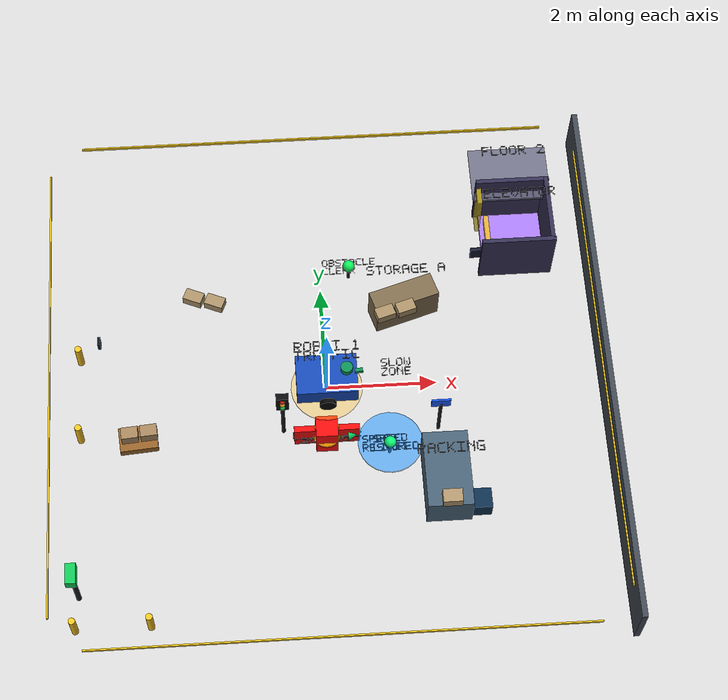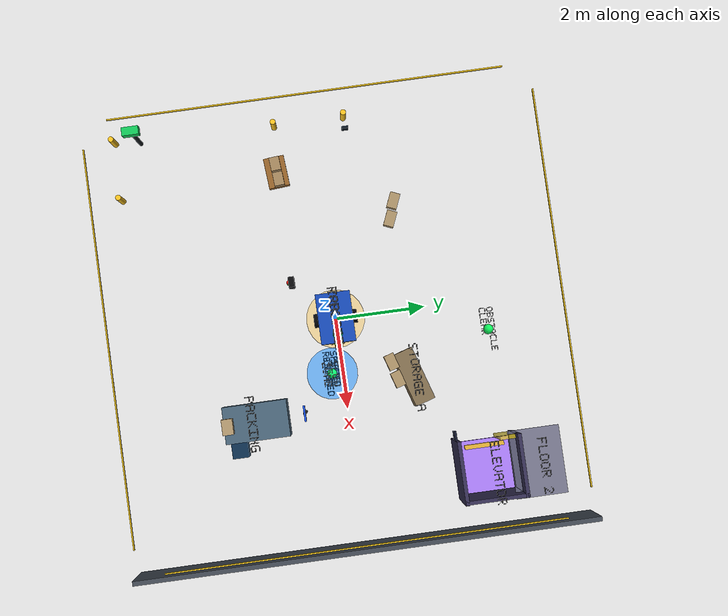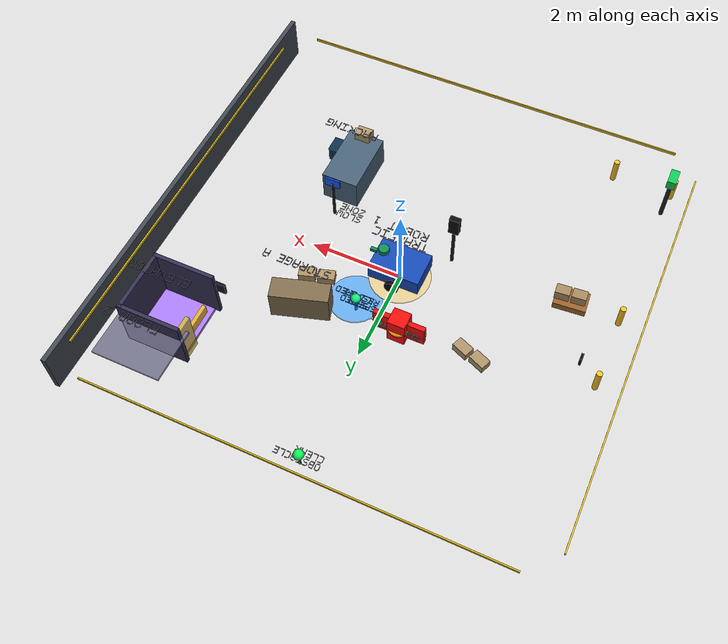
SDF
<sdf version="1.9">
 <world name="indoor_room">
  <model name="east_wall">
   <static>true</static>
   <pose>5 0 0.5 0 0 0</pose>
   <link name="link">
    <collision name="c"><geometry><box><size>0.1 10 1</size></box></geometry></collision>
    <visual name="v">
     <geometry><box><size>0.1 10 1</size></box></geometry>
     <material><diffuse>0.25 0.28 0.32 1</diffuse></material>
    </visual>
   </link>
  </model>
  <model name="storage_rack_1">
   <static>true</static>
   <pose>1.5 1.5 0.35 0 0 0.3</pose>
   <link name="link">
    <collision name="c"><geometry><box><size>1.2 0.45 0.7</size></box></geometry></collision>
    <visual name="v">
     <geometry><box><size>1.2 0.45 0.7</size></box></geometry>
     <material><diffuse>0.50 0.42 0.30 1</diffuse></material>
    </visual>
   </link>
  </model>
  <model name="packing_table">
   <static>true</static>
   <pose>2 -2 0.35 0 0 0.0</pose>
   <link name="link">
    <collision name="c"><geometry><box><size>0.8 1.4 0.7</size></box></geometry></collision>
    <visual name="v">
     <geometry><box><size>0.8 1.4 0.7</size></box></geometry>
     <material><diffuse>0.28 0.38 0.46 1</diffuse></material>
    </visual>
   </link>
  </model>
  <model name="showcase_pallets_and_totes">
   <static>true</static>
   <link name="link">
    <visual name="receiving_pallet">
     <pose>-3.42 -0.86 0.08 0 0 0.08</pose>
     <geometry><box><size>0.68 0.46 0.16</size></box></geometry>
     <material><diffuse>0.58 0.38 0.16 1</diffuse></material>
    </visual>
    <visual name="receiving_tote_1">
     <pose>-3.56 -0.86 0.30 0 0 0.08</pose>
     <geometry><box><size>0.30 0.22 0.22</size></box></geometry>
     <material><diffuse>0.64 0.52 0.36 1</diffuse></material>
    </visual>
    <visual name="receiving_tote_2">
     <pose>-3.22 -0.83 0.30 0 0 0.08</pose>
     <geometry><box><size>0.30 0.22 0.22</size></box></geometry>
     <material><diffuse>0.64 0.52 0.36 1</diffuse></material>
    </visual>
    <visual name="storage_a_tote_1">
     <pose>1.12 1.06 0.78 0 0 0.30</pose>
     <geometry><box><size>0.34 0.22 0.18</size></box></geometry>
     <material><diffuse>0.66 0.56 0.40 1</diffuse></material>
    </visual>
    <visual name="storage_a_tote_2">
     <pose>1.50 1.15 0.78 0 0 0.30</pose>
     <geometry><box><size>0.34 0.22 0.18</size></box></geometry>
     <material><diffuse>0.66 0.56 0.40 1</diffuse></material>
    </visual>
    <visual name="storage_b_tote_1">
     <pose>-2.32 1.58 0.78 0 0 -0.40</pose>
     <geometry><box><size>0.34 0.22 0.18</size></box></geometry>
     <material><diffuse>0.66 0.56 0.40 1</diffuse></material>
    </visual>
    <visual name="storage_b_tote_2">
     <pose>-1.94 1.46 0.78 0 0 -0.40</pose>
     <geometry><box><size>0.34 0.22 0.18</size></box></geometry>
     <material><diffuse>0.66 0.56 0.40 1</diffuse></material>
    </visual>
    <visual name="packing_bin">
     <pose>2.52 -2.45 0.18 0 0 0</pose>
     <geometry><box><size>0.46 0.36 0.36</size></box></geometry>
     <material><diffuse>0.05 0.18 0.30 1</diffuse></material>
    </visual>
    <visual name="packing_ready_tote">
     <pose>2.02 -2.60 0.82 0 0 0</pose>
     <geometry><box><size>0.34 0.24 0.20</size></box></geometry>
     <material><diffuse>0.68 0.58 0.42 1</diffuse></material>
    </visual>
   </link>
  </model>
  <model name="showcase_environment_polish">
   <static>true</static>
   <link name="link">
    <visual name="north_wall_safety_stripe">
     <pose>0 4.935 0.72 0 0 0</pose>
     <geometry><box><size>8.70 0.026 0.055</size></box></geometry>
     <material><diffuse>0.96 0.78 0.10 1</diffuse><emissive>0.20 0.12 0.00 1</emissive></material>
    </visual>
    <visual name="south_wall_safety_stripe">
     <pose>0 -4.935 0.72 0 0 0</pose>
     <geometry><box><size>8.70 0.026 0.055</size></box></geometry>
     <material><diffuse>0.96 0.78 0.10 1</diffuse><emissive>0.20 0.12 0.00 1</emissive></material>
    </visual>
    <visual name="east_wall_safety_stripe">
     <pose>4.935 0 0.72 0 0 0</pose>
     <geometry><box><size>0.026 8.70 0.055</size></box></geometry>
     <material><diffuse>0.96 0.78 0.10 1</diffuse><emissive>0.20 0.12 0.00 1</emissive></material>
    </visual>
    <visual name="west_wall_safety_stripe">
     <pose>-4.935 0 0.72 0 0 0</pose>
     <geometry><box><size>0.026 8.70 0.055</size></box></geometry>
     <material><diffuse>0.96 0.78 0.10 1</diffuse><emissive>0.20 0.12 0.00 1</emissive></material>
    </visual>
    <visual name="dock_charge_mast">
     <pose>-4.48 -3.78 0.62 0 0 0</pose>
     <geometry><cylinder><radius>0.045</radius><length>1.12</length></cylinder></geometry>
     <material><diffuse>0.10 0.12 0.14 1</diffuse></material>
    </visual>
    <visual name="dock_charge_panel">
     <pose>-4.48 -3.78 1.22 0 0 0</pose>
     <geometry><box><size>0.18 0.36 0.20</size></box></geometry>
     <material><diffuse>0.06 0.78 0.34 0.95</diffuse><emissive>0.00 0.32 0.08 1</emissive></material>
    </visual>
    <visual name="door_keypad">
     <pose>-4.04 0.76 0.78 0 0 0</pose>
     <geometry><box><size>0.05 0.14 0.22</size></box></geometry>
     <material><diffuse>0.02 0.06 0.10 1</diffuse><emissive>0.00 0.18 0.28 1</emissive></material>
    </visual>
    <visual name="elevator_call_panel">
     <pose>2.86 2.18 0.86 0 0 0</pose>
     <geometry><box><size>0.20 0.05 0.28</size></box></geometry>
     <material><diffuse>0.06 0.08 0.16 1</diffuse><emissive>0.18 0.12 0.42 1</emissive></material>
    </visual>
    <visual name="traffic_light_pole">
     <pose>-0.82 -0.82 0.62 0 0 0</pose>
     <geometry><cylinder><radius>0.035</radius><length>1.18</length></cylinder></geometry>
     <material><diffuse>0.08 0.09 0.10 1</diffuse></material>
    </visual>
    <visual name="traffic_light_housing">
     <pose>-0.82 -0.82 1.25 0 0 0</pose>
     <geometry><box><size>0.22 0.12 0.42</size></box></geometry>
     <material><diffuse>0.04 0.04 0.05 1</diffuse></material>
    </visual>
    <visual name="traffic_light_red">
     <pose>-0.82 -0.88 1.36 0 0 0</pose>
     <geometry><sphere><radius>0.042</radius></sphere></geometry>
     <material><diffuse>0.95 0.06 0.04 1</diffuse><emissive>0.42 0.00 0.00 1</emissive></material>
    </visual>
    <visual name="traffic_light_yellow">
     <pose>-0.82 -0.88 1.25 0 0 0</pose>
     <geometry><sphere><radius>0.042</radius></sphere></geometry>
     <material><diffuse>1.00 0.72 0.04 1</diffuse><emissive>0.34 0.18 0.00 1</emissive></material>
    </visual>
    <visual name="traffic_light_green">
     <pose>-0.82 -0.88 1.14 0 0 0</pose>
     <geometry><sphere><radius>0.042</radius></sphere></geometry>
     <material><diffuse>0.05 0.88 0.28 1</diffuse><emissive>0.00 0.30 0.08 1</emissive></material>
    </visual>
    <visual name="speed_sign_pole">
     <pose>1.95 -0.92 0.55 0 0 0</pose>
     <geometry><cylinder><radius>0.032</radius><length>1.02</length></cylinder></geometry>
     <material><diffuse>0.08 0.09 0.10 1</diffuse></material>
    </visual>
    <visual name="speed_sign_panel">
     <pose>1.95 -0.92 1.08 0 0 0</pose>
     <geometry><box><size>0.34 0.035 0.22</size></box></geometry>
     <material><diffuse>0.10 0.34 0.96 0.96</diffuse><emissive>0.00 0.10 0.28 1</emissive></material>
    </visual>
    <visual name="receiving_bollard_1">
     <pose>-4.45 -0.78 0.28 0 0 0</pose>
     <geometry><cylinder><radius>0.06</radius><length>0.56</length></cylinder></geometry>
     <material><diffuse>0.98 0.76 0.12 1</diffuse><emissive>0.18 0.10 0.00 1</emissive></material>
    </visual>
    <visual name="receiving_bollard_2">
     <pose>-4.45 0.78 0.28 0 0 0</pose>
     <geometry><cylinder><radius>0.06</radius><length>0.56</length></cylinder></geometry>
     <material><diffuse>0.98 0.76 0.12 1</diffuse><emissive>0.18 0.10 0.00 1</emissive></material>
    </visual>
    <visual name="dock_bollard_1">
     <pose>-4.55 -4.35 0.28 0 0 0</pose>
     <geometry><cylinder><radius>0.06</radius><length>0.56</length></cylinder></geometry>
     <material><diffuse>0.98 0.76 0.12 1</diffuse><emissive>0.18 0.10 0.00 1</emissive></material>
    </visual>
    <visual name="dock_bollard_2">
     <pose>-3.25 -4.35 0.28 0 0 0</pose>
     <geometry><cylinder><radius>0.06</radius><length>0.56</length></cylinder></geometry>
     <material><diffuse>0.98 0.76 0.12 1</diffuse><emissive>0.18 0.10 0.00 1</emissive></material>
    </visual>
   </link>
  </model>
  <model name="freight_elevator">
   <static>true</static>
   <pose>3.65 2.85 0 0 0 0</pose>
   <link name="link">
    <visual name="back_wall_visual">
     <pose>0.62 0 0.6 0 0 0</pose>
     <geometry><box><size>0.08 1.35 1.2</size></box></geometry>
     <material><diffuse>0.20 0.18 0.32 1</diffuse></material>
    </visual>
    <visual name="left_wall_visual">
     <pose>0 -0.64 0.6 0 0 0</pose>
     <geometry><box><size>1.35 0.08 1.2</size></box></geometry>
     <material><diffuse>0.20 0.18 0.32 1</diffuse></material>
    </visual>
    <visual name="right_wall_visual">
     <pose>0 0.64 0.6 0 0 0</pose>
     <geometry><box><size>1.35 0.08 1.2</size></box></geometry>
     <material><diffuse>0.20 0.18 0.32 1</diffuse></material>
    </visual>
    <visual name="door_open_visual">
     <pose>-0.62 0.42 0.55 0 0 0</pose>
     <geometry><box><size>0.08 0.32 1.0</size></box></geometry>
     <material><diffuse>0.85 0.75 0.12 0.75</diffuse></material>
    </visual>
   </link>
  </model>
  <model name="freight_elevator_cabin">
   <static>false</static>
   <pose>3.65 2.85 0.04 0 0 0</pose>
   <link name="link">
    <gravity>false</gravity>
    <visual name="platform_visual">
     <geometry><box><size>1.15 1.15 0.08</size></box></geometry>
     <material><diffuse>0.65 0.48 0.95 0.95</diffuse></material>
    </visual>
    <visual name="indicator_visual">
     <pose>-0.45 0 0.18 0 0 0</pose>
     <geometry><box><size>0.08 0.85 0.22</size></box></geometry>
     <material><diffuse>0.95 0.75 0.12 0.85</diffuse><emissive>0.45 0.28 0.02 1</emissive></material>
    </visual>
   </link>
  </model>
  <model name="floor_2_dropoff_zone">
   <static>true</static>
   <pose>3.65 3.85 0.82 0 0 0</pose>
   <link name="link">
    <visual name="platform_visual">
     <geometry><box><size>1.45 1.1 0.06</size></box></geometry>
     <material><diffuse>0.42 0.42 0.52 0.85</diffuse></material>
    </visual>
   </link>
  </model>
  <model name="traffic_intersection_zone">
   <static>true</static>
   <pose>0 0 0.03 0 0 0</pose>
   <link name="link">
    <visual name="visual">
     <geometry><cylinder><radius>0.65</radius><length>0.03</length></cylinder></geometry>
     <material><diffuse>1.0 0.72 0.1 0.35</diffuse></material>
    </visual>
   </link>
  </model>
  <model name="traffic_route_block_barrier">
   <static>false</static>
   <pose>0 0 -2 0 0 0</pose>
   <link name="link">
    <gravity>false</gravity>
    <visual name="barrier_visual">
     <geometry><box><size>1.25 0.12 0.55</size></box></geometry>
     <material><diffuse>0.95 0.05 0.05 0.9</diffuse><emissive>0.35 0.0 0.0 1</emissive></material>
    </visual>
   </link>
  </model>
  <model name="speed_limit_zone_indicator">
   <static>false</static>
   <pose>1.2 -0.25 -2 0 0 0</pose>
   <link name="link">
    <gravity>false</gravity>
    <visual name="slow_zone_visual">
     <geometry><cylinder><radius>0.62</radius><length>0.05</length></cylinder></geometry>
     <material><diffuse>0.08 0.55 1.0 0.55</diffuse><emissive>0.02 0.16 0.38 1</emissive></material>
    </visual>
   </link>
  </model>
  <model name="speed_limit_restored_beacon">
   <static>false</static>
   <pose>1.2 -0.25 -2 0 0 0</pose>
   <link name="link">
    <gravity>false</gravity>
    <visual name="restore_visual">
     <geometry><sphere><radius>0.12</radius></sphere></geometry>
     <material><diffuse>0.05 0.95 0.45 0.95</diffuse><emissive>0.02 0.55 0.20 1</emissive></material>
    </visual>
    <visual name="speed_bar_visual">
     <pose>0 0 -0.22 0 0 0</pose>
     <geometry><cylinder><radius>0.03</radius><length>0.44</length></cylinder></geometry>
     <material><diffuse>0.08 0.08 0.09 1</diffuse></material>
    </visual>
   </link>
  </model>
  <model name="traffic_deadlock_warning_beacon">
   <static>false</static>
   <pose>0 0 -2 0 0 0</pose>
   <link name="link">
    <gravity>false</gravity>
    <visual name="warning_visual">
     <geometry><sphere><radius>0.14</radius></sphere></geometry>
     <material><diffuse>1.0 0.18 0.05 0.95</diffuse><emissive>0.75 0.04 0.0 1</emissive></material>
    </visual>
   </link>
  </model>
  <model name="traffic_route_reopen_beacon">
   <static>false</static>
   <pose>0 0 -2 0 0 0</pose>
   <link name="link">
    <gravity>false</gravity>
    <visual name="open_visual">
     <geometry><sphere><radius>0.13</radius></sphere></geometry>
     <material><diffuse>0.04 0.95 0.62 0.95</diffuse><emissive>0.01 0.55 0.28 1</emissive></material>
    </visual>
    <visual name="lane_visual">
     <pose>0 0 -0.28 0 0 0</pose>
     <geometry><box><size>1.10 0.08 0.08</size></box></geometry>
     <material><diffuse>0.04 0.70 0.38 0.85</diffuse><emissive>0.01 0.22 0.10 1</emissive></material>
    </visual>
   </link>
  </model>
  <model name="traffic_yield_wait_marker">
   <static>false</static>
   <pose>0 0 -2 0 0 0</pose>
   <link name="link">
    <gravity>false</gravity>
    <visual name="wait_pad_visual">
     <geometry><cylinder><radius>0.28</radius><length>0.05</length></cylinder></geometry>
     <material><diffuse>1.0 0.78 0.05 0.70</diffuse><emissive>0.35 0.20 0.00 1</emissive></material>
    </visual>
    <visual name="wait_bar_visual">
     <pose>0 0 0.18 0 0 0</pose>
     <geometry><box><size>0.46 0.10 0.26</size></box></geometry>
     <material><diffuse>1.0 0.55 0.02 0.88</diffuse><emissive>0.42 0.18 0.00 1</emissive></material>
    </visual>
   </link>
  </model>
  <model name="traffic_release_go_marker">
   <static>false</static>
   <pose>0 0 -2 0 0 0</pose>
   <link name="link">
    <gravity>false</gravity>
    <visual name="go_lane_visual">
     <geometry><box><size>0.92 0.10 0.10</size></box></geometry>
     <material><diffuse>0.04 0.95 0.42 0.85</diffuse><emissive>0.01 0.48 0.16 1</emissive></material>
    </visual>
    <visual name="go_head_visual">
     <pose>0.54 0 0 0 1.5708 0</pose>
     <geometry><cone><radius>0.16</radius><length>0.26</length></cone></geometry>
     <material><diffuse>0.04 0.95 0.42 0.92</diffuse><emissive>0.01 0.48 0.16 1</emissive></material>
    </visual>
   </link>
  </model>
  <model name="operator_confirmation_panel">
   <static>false</static>
   <pose>0 0 -2 0 0 0</pose>
   <link name="link">
    <gravity>false</gravity>
    <visual name="stand_visual">
     <pose>0 0 -0.18 0 0 0</pose>
     <geometry><cylinder><radius>0.035</radius><length>0.36</length></cylinder></geometry>
     <material><diffuse>0.08 0.08 0.09 1</diffuse></material>
    </visual>
    <visual name="screen_visual">
     <pose>0 0 0.11 0 0 0</pose>
     <geometry><box><size>0.36 0.08 0.26</size></box></geometry>
     <material><diffuse>0.06 0.12 0.18 1</diffuse><emissive>0.00 0.12 0.26 1</emissive></material>
    </visual>
    <visual name="confirm_light_visual">
     <pose>0.12 0 0.18 0 0 0</pose>
     <geometry><sphere><radius>0.055</radius></sphere></geometry>
     <material><diffuse>1.0 0.85 0.05 0.95</diffuse><emissive>0.55 0.36 0.02 1</emissive></material>
    </visual>
   </link>
  </model>
  <model name="payload_lock_indicator">
   <static>false</static>
   <pose>0 0 -2 0 0 0</pose>
   <link name="link">
    <gravity>false</gravity>
    <visual name="lock_base_visual">
     <geometry><box><size>0.34 0.22 0.06</size></box></geometry>
     <material><diffuse>0.04 0.45 0.18 0.95</diffuse><emissive>0.01 0.20 0.06 1</emissive></material>
    </visual>
    <visual name="lock_light_visual">
     <pose>0 0 0.08 0 0 0</pose>
     <geometry><sphere><radius>0.07</radius></sphere></geometry>
     <material><diffuse>0.05 0.95 0.34 0.95</diffuse><emissive>0.02 0.55 0.12 1</emissive></material>
    </visual>
   </link>
  </model>
  <model name="safety_obstacle_block">
   <static>false</static>
   <pose>0 0 -2 0 0 0</pose>
   <link name="link">
    <gravity>false</gravity>
    <visual name="obstacle_visual">
     <geometry><box><size>0.42 0.42 0.70</size></box></geometry>
     <material><diffuse>1.0 0.05 0.05 0.9</diffuse><emissive>0.35 0.0 0.0 1</emissive></material>
    </visual>
   </link>
  </model>
  <model name="obstacle_clearance_indicator">
   <static>false</static>
   <pose>0.65 3.65 -2 0 0 0</pose>
   <link name="link">
    <gravity>false</gravity>
    <visual name="clear_visual">
     <geometry><sphere><radius>0.12</radius></sphere></geometry>
     <material><diffuse>0.05 0.95 0.35 0.95</diffuse><emissive>0.02 0.55 0.12 1</emissive></material>
    </visual>
    <visual name="base_visual">
     <pose>0 0 -0.22 0 0 0</pose>
     <geometry><cylinder><radius>0.03</radius><length>0.44</length></cylinder></geometry>
     <material><diffuse>0.08 0.08 0.09 1</diffuse></material>
    </visual>
   </link>
  </model>
  <model name="label_robot_1">
   <static>false</static>
   <pose>0.00 0.00 1.70 0 0 0.00</pose>
   <link name="link">
    <gravity>false</gravity>
    <visual name="text_mesh_visual">
     <cast_shadows>false</cast_shadows>
     <geometry><mesh><uri>../media/text_meshes/label_robot_1.obj</uri></mesh></geometry>
     <material>
      <ambient>0.000 0.000 0.000 1</ambient>
      <diffuse>0.000 0.000 0.000 1</diffuse>
      <emissive>0 0 0 1</emissive>
      <double_sided>true</double_sided>
     </material>
    </visual>
   </link>
  </model>
  <model name="label_elevator">
   <static>false</static>
   <pose>3.65 2.85 1.80 0 0 0.00</pose>
   <link name="link">
    <gravity>false</gravity>
    <visual name="text_mesh_visual">
     <cast_shadows>false</cast_shadows>
     <geometry><mesh><uri>../media/text_meshes/label_elevator.obj</uri></mesh></geometry>
     <material>
      <ambient>0.000 0.000 0.000 1</ambient>
      <diffuse>0.000 0.000 0.000 1</diffuse>
      <emissive>0 0 0 1</emissive>
      <double_sided>true</double_sided>
     </material>
    </visual>
   </link>
  </model>
  <model name="label_floor_2">
   <static>false</static>
   <pose>3.65 3.85 1.65 0 0 0.00</pose>
   <link name="link">
    <gravity>false</gravity>
    <visual name="text_mesh_visual">
     <cast_shadows>false</cast_shadows>
     <geometry><mesh><uri>../media/text_meshes/label_floor_2.obj</uri></mesh></geometry>
     <material>
      <ambient>0.000 0.000 0.000 1</ambient>
      <diffuse>0.000 0.000 0.000 1</diffuse>
      <emissive>0 0 0 1</emissive>
      <double_sided>true</double_sided>
     </material>
    </visual>
   </link>
  </model>
  <model name="label_storage_a">
   <static>false</static>
   <pose>1.50 1.50 1.60 0 0 0.00</pose>
   <link name="link">
    <gravity>false</gravity>
    <visual name="text_mesh_visual">
     <cast_shadows>false</cast_shadows>
     <geometry><mesh><uri>../media/text_meshes/label_storage_a.obj</uri></mesh></geometry>
     <material>
      <ambient>0.000 0.000 0.000 1</ambient>
      <diffuse>0.000 0.000 0.000 1</diffuse>
      <emissive>0 0 0 1</emissive>
      <double_sided>true</double_sided>
     </material>
    </visual>
   </link>
  </model>
  <model name="label_packing">
   <static>false</static>
   <pose>2.00 -2.00 1.60 0 0 0.00</pose>
   <link name="link">
    <gravity>false</gravity>
    <visual name="text_mesh_visual">
     <cast_shadows>false</cast_shadows>
     <geometry><mesh><uri>../media/text_meshes/label_packing.obj</uri></mesh></geometry>
     <material>
      <ambient>0.000 0.000 0.000 1</ambient>
      <diffuse>0.000 0.000 0.000 1</diffuse>
      <emissive>0 0 0 1</emissive>
      <double_sided>true</double_sided>
     </material>
    </visual>
   </link>
  </model>
  <model name="label_traffic">
   <static>false</static>
   <pose>0.00 0.00 1.35 0 0 0.00</pose>
   <link name="link">
    <gravity>false</gravity>
    <visual name="text_mesh_visual">
     <cast_shadows>false</cast_shadows>
     <geometry><mesh><uri>../media/text_meshes/label_traffic.obj</uri></mesh></geometry>
     <material>
      <ambient>0.000 0.000 0.000 1</ambient>
      <diffuse>0.000 0.000 0.000 1</diffuse>
      <emissive>0 0 0 1</emissive>
      <double_sided>true</double_sided>
     </material>
    </visual>
   </link>
  </model>
  <model name="label_slow_zone">
   <static>false</static>
   <pose>1.20 -0.25 1.25 0 0 0.00</pose>
   <link name="link">
    <gravity>false</gravity>
    <visual name="text_mesh_visual">
     <cast_shadows>false</cast_shadows>
     <geometry><mesh><uri>../media/text_meshes/label_slow_zone.obj</uri></mesh></geometry>
     <material>
      <ambient>0.000 0.000 0.000 1</ambient>
      <diffuse>0.000 0.000 0.000 1</diffuse>
      <emissive>0 0 0 1</emissive>
      <double_sided>true</double_sided>
     </material>
    </visual>
   </link>
  </model>
  <model name="label_operator_confirmation_status">
   <static>false</static>
   <pose>0.00 0.00 -2 0 0 0.00</pose>
   <link name="link">
    <gravity>false</gravity>
    <visual name="text_mesh_visual">
     <cast_shadows>false</cast_shadows>
     <geometry><mesh><uri>../media/text_meshes/label_operator_confirmation_status.obj</uri></mesh></geometry>
     <material>
      <ambient>0.000 0.000 0.000 1</ambient>
      <diffuse>0.000 0.000 0.000 1</diffuse>
      <emissive>0 0 0 1</emissive>
      <double_sided>true</double_sided>
     </material>
    </visual>
   </link>
  </model>
  <model name="label_traffic_block_status">
   <static>false</static>
   <pose>0.00 0.00 -2 0 0 0.00</pose>
   <link name="link">
    <gravity>false</gravity>
    <visual name="text_mesh_visual">
     <cast_shadows>false</cast_shadows>
     <geometry><mesh><uri>../media/text_meshes/label_traffic_block_status.obj</uri></mesh></geometry>
     <material>
      <ambient>0.000 0.000 0.000 1</ambient>
      <diffuse>0.000 0.000 0.000 1</diffuse>
      <emissive>0 0 0 1</emissive>
      <double_sided>true</double_sided>
     </material>
    </visual>
   </link>
  </model>
  <model name="label_traffic_deadlock_status">
   <static>false</static>
   <pose>0.00 0.00 -2 0 0 0.00</pose>
   <link name="link">
    <gravity>false</gravity>
    <visual name="text_mesh_visual">
     <cast_shadows>false</cast_shadows>
     <geometry><mesh><uri>../media/text_meshes/label_traffic_deadlock_status.obj</uri></mesh></geometry>
     <material>
      <ambient>0.000 0.000 0.000 1</ambient>
      <diffuse>0.000 0.000 0.000 1</diffuse>
      <emissive>0 0 0 1</emissive>
      <double_sided>true</double_sided>
     </material>
    </visual>
   </link>
  </model>
  <model name="label_traffic_reopen_status">
   <static>false</static>
   <pose>0.00 0.00 -2 0 0 0.00</pose>
   <link name="link">
    <gravity>false</gravity>
    <visual name="text_mesh_visual">
     <cast_shadows>false</cast_shadows>
     <geometry><mesh><uri>../media/text_meshes/label_traffic_reopen_status.obj</uri></mesh></geometry>
     <material>
      <ambient>0.000 0.000 0.000 1</ambient>
      <diffuse>0.000 0.000 0.000 1</diffuse>
      <emissive>0 0 0 1</emissive>
      <double_sided>true</double_sided>
     </material>
    </visual>
   </link>
  </model>
  <model name="label_speed_limit_status">
   <static>false</static>
   <pose>1.20 -0.25 -2 0 0 0.00</pose>
   <link name="link">
    <gravity>false</gravity>
    <visual name="text_mesh_visual">
     <cast_shadows>false</cast_shadows>
     <geometry><mesh><uri>../media/text_meshes/label_speed_limit_status.obj</uri></mesh></geometry>
     <material>
      <ambient>0.000 0.000 0.000 1</ambient>
      <diffuse>0.000 0.000 0.000 1</diffuse>
      <emissive>0 0 0 1</emissive>
      <double_sided>true</double_sided>
     </material>
    </visual>
   </link>
  </model>
  <model name="label_speed_restored_status">
   <static>false</static>
   <pose>1.20 -0.25 -2 0 0 0.00</pose>
   <link name="link">
    <gravity>false</gravity>
    <visual name="text_mesh_visual">
     <cast_shadows>false</cast_shadows>
     <geometry><mesh><uri>../media/text_meshes/label_speed_restored_status.obj</uri></mesh></geometry>
     <material>
      <ambient>0.000 0.000 0.000 1</ambient>
      <diffuse>0.000 0.000 0.000 1</diffuse>
      <emissive>0 0 0 1</emissive>
      <double_sided>true</double_sided>
     </material>
    </visual>
   </link>
  </model>
  <model name="label_obstacle_status">
   <static>false</static>
   <pose>0.00 0.00 -2 0 0 0.00</pose>
   <link name="link">
    <gravity>false</gravity>
    <visual name="text_mesh_visual">
     <cast_shadows>false</cast_shadows>
     <geometry><mesh><uri>../media/text_meshes/label_obstacle_status.obj</uri></mesh></geometry>
     <material>
      <ambient>0.000 0.000 0.000 1</ambient>
      <diffuse>0.000 0.000 0.000 1</diffuse>
      <emissive>0 0 0 1</emissive>
      <double_sided>true</double_sided>
     </material>
    </visual>
   </link>
  </model>
  <model name="label_obstacle_clear_status">
   <static>false</static>
   <pose>0.65 3.65 -2 0 0 0.00</pose>
   <link name="link">
    <gravity>false</gravity>
    <visual name="text_mesh_visual">
     <cast_shadows>false</cast_shadows>
     <geometry><mesh><uri>../media/text_meshes/label_obstacle_clear_status.obj</uri></mesh></geometry>
     <material>
      <ambient>0.000 0.000 0.000 1</ambient>
      <diffuse>0.000 0.000 0.000 1</diffuse>
      <emissive>0 0 0 1</emissive>
      <double_sided>true</double_sided>
     </material>
    </visual>
   </link>
  </model>
  <model name="mobile_robot">
   <pose>0 0 0.24 0 0 0</pose>
   <link name="base_link">
    <inertial><mass>24.0</mass><inertia><ixx>0.18</ixx><iyy>0.28</iyy><izz>0.36</izz></inertia></inertial>
    <collision name="base_collision">
     <pose>0 0 0.18 0 0 0</pose>
     <geometry><box><size>1.10 0.76 0.36</size></box></geometry>
    </collision>
    <visual name="base_visual">
     <pose>0 0 0.18 0 0 0</pose>
     <geometry><box><size>1.10 0.76 0.36</size></box></geometry>
     <material><diffuse>0.08 0.28 0.70 1</diffuse></material>
    </visual>
    <visual name="lidar_visual">
     <pose>0.36 0 0.54 0 0 0</pose>
     <geometry><cylinder><radius>0.11</radius><length>0.11</length></cylinder></geometry>
     <material><diffuse>0.05 0.55 0.32 1</diffuse></material>
    </visual>
    <visual name="camera_visual">
     <pose>0.58 0 0.42 0 0 0</pose>
     <geometry><box><size>0.14 0.07 0.07</size></box></geometry>
     <material><diffuse>0.05 0.55 0.32 1</diffuse></material>
    </visual>
    <sensor name="lidar" type="gpu_lidar">
     <pose>0.36 0 0.54 0 0 0</pose>
     <topic>/sim/scan</topic>
     <update_rate>10</update_rate>
     <always_on>true</always_on>
     <lidar>
      <scan>
       <horizontal>
        <samples>360</samples>
        <resolution>1</resolution>
        <min_angle>-3.14159265359</min_angle>
        <max_angle>3.14159265359</max_angle>
       </horizontal>
      </scan>
      <range><min>0.08</min><max>12.0</max><resolution>0.01</resolution></range>
     </lidar>
    </sensor>
    <sensor name="imu" type="imu">
     <pose>0 0 0.46 0 0 0</pose>
     <topic>/sim/imu</topic>
     <update_rate>100</update_rate>
     <always_on>true</always_on>
    </sensor>
   </link>
   <link name="left_wheel">
    <pose>0 0.43 0 1.57079632679 0 0</pose>
    <inertial><mass>0.7</mass><inertia><ixx>0.002</ixx><iyy>0.002</iyy><izz>0.002</izz></inertia></inertial>
    <collision name="collision">
     <geometry><cylinder><radius>0.15</radius><length>0.09</length></cylinder></geometry>
    </collision>
    <visual name="visual">
     <geometry><cylinder><radius>0.15</radius><length>0.09</length></cylinder></geometry>
     <material><diffuse>0.02 0.02 0.02 1</diffuse></material>
    </visual>
   </link>
   <link name="right_wheel">
    <pose>0 -0.43 0 1.57079632679 0 0</pose>
    <inertial><mass>0.7</mass><inertia><ixx>0.002</ixx><iyy>0.002</iyy><izz>0.002</izz></inertia></inertial>
    <collision name="collision">
     <geometry><cylinder><radius>0.15</radius><length>0.09</length></cylinder></geometry>
    </collision>
    <visual name="visual">
     <geometry><cylinder><radius>0.15</radius><length>0.09</length></cylinder></geometry>
     <material><diffuse>0.02 0.02 0.02 1</diffuse></material>
    </visual>
   </link>
   <link name="caster_wheel">
    <pose>-0.4 0 -0.08 0 0 0</pose>
    <collision name="collision"><geometry><sphere><radius>0.08</radius></sphere></geometry></collision>
    <visual name="visual">
     <geometry><sphere><radius>0.08</radius></sphere></geometry>
     <material><diffuse>0.02 0.02 0.02 1</diffuse></material>
    </visual>
   </link>
   <joint name="left_wheel_joint" type="revolute">
    <parent>base_link</parent>
    <child>left_wheel</child>
    <axis><xyz>0 1 0</xyz></axis>
   </joint>
   <joint name="right_wheel_joint" type="revolute">
    <parent>base_link</parent>
    <child>right_wheel</child>
    <axis><xyz>0 1 0</xyz></axis>
   </joint>
   <joint name="caster_joint" type="fixed"><parent>base_link</parent><child>caster_wheel</child></joint>
   <plugin filename="gz-sim-diff-drive-system" name="gz::sim::systems::DiffDrive">
    <left_joint>left_wheel_joint</left_joint>
    <right_joint>right_wheel_joint</right_joint>
    <wheel_separation>0.86</wheel_separation>
    <wheel_radius>0.15</wheel_radius>
    <topic>/cmd_vel</topic>
    <odom_topic>/model/mobile_robot/odometry</odom_topic>
    <frame_id>odom</frame_id>
    <child_frame_id>base_link</child_frame_id>
   </plugin>
  </model>
 </world>
</sdf>
